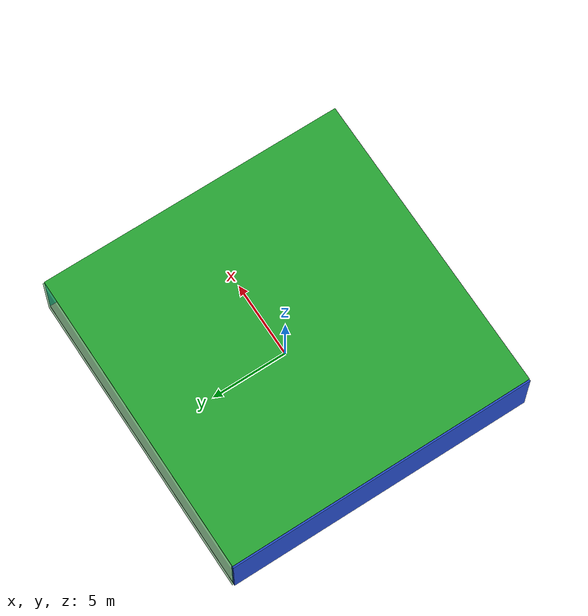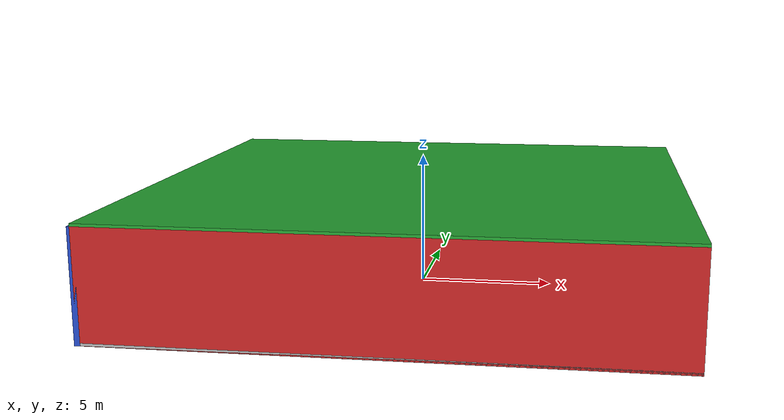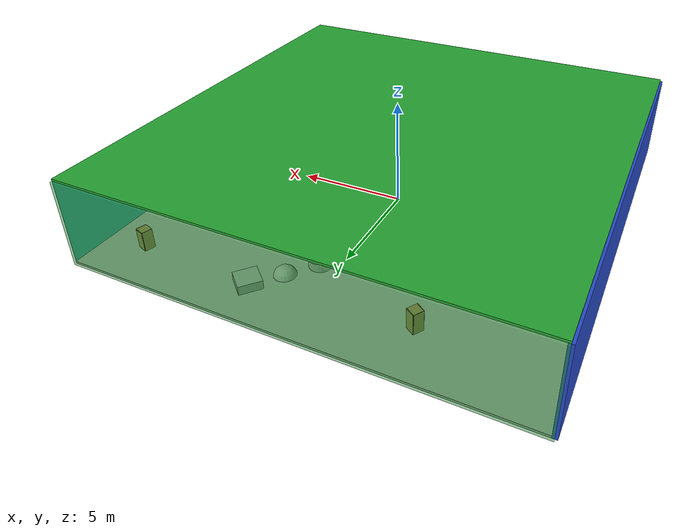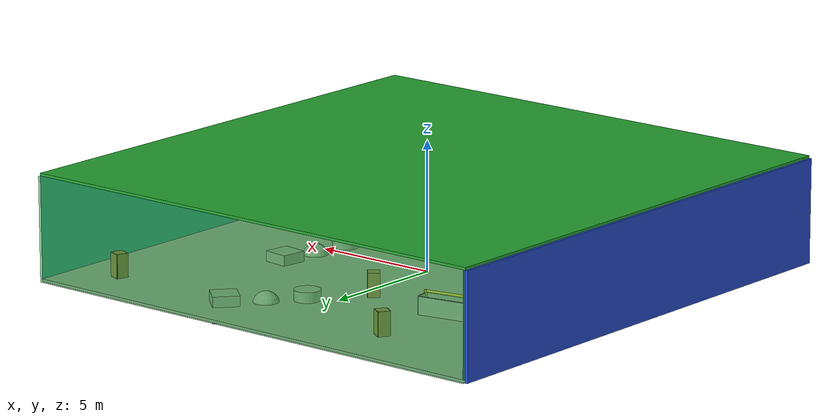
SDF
<sdf version="1.4">
 <world name="default">
  <physics type="ode">
   <max_step_size>0.001</max_step_size>
   <real_time_factor>1</real_time_factor>
   <real_time_update_rate>1000</real_time_update_rate>
   <gravity>0 0 -9.8</gravity>
  </physics>
  <scene><ambient>0.4 0.4 0.4 1</ambient><background>0.7 0.7 0.7 1</background><shadows>1</shadows></scene>
  <model name="Surrounding">
   <static>1</static>
   <link name="Ceiling">
    <collision name="Ceiling_Collision"><geometry><box><size>20 20 0.1</size></box></geometry></collision>
    <visual name="Ceiling_Visual">
     <geometry><box><size>20 20 0.1</size></box></geometry>
     <material>
      <script><uri>file://media/materials/scripts/gazebo.material</uri><name>Gazebo/Green</name></script>
     </material>
    </visual>
    <pose>0 0 4.05 0 0 0</pose>
   </link>
   <link name="Wall_South">
    <collision name="Wall_South_Collision">
     <geometry><box><size>20 0 4</size></box></geometry>
     <pose>0 0 2 0 -0 0</pose>
    </collision>
    <visual name="Wall_South_Visual">
     <pose>0 0 2 0 -0 0</pose>
     <geometry><box><size>20 0 4</size></box></geometry>
     <material>
      <script><uri>file://media/materials/scripts/gazebo.material</uri><name>Gazebo/Red</name></script>
     </material>
    </visual>
    <velocity_decay><linear>0</linear><angular>0</angular></velocity_decay>
    <pose>0 -10 0 0 -0 0</pose>
   </link>
   <link name="Wall_East">
    <collision name="Wall_21_Collision">
     <geometry><box><size>20 0 4</size></box></geometry>
     <pose>0 0 2 0 -0 0</pose>
    </collision>
    <visual name="Wall_21_Visual">
     <pose>0 0 2 0 -0 0</pose>
     <geometry><box><size>20 0 4</size></box></geometry>
     <material>
      <script><uri>file://media/materials/scripts/gazebo.material</uri><name>Gazebo/Turquoise</name></script>
     </material>
    </visual>
    <velocity_decay><linear>0</linear><angular>0</angular></velocity_decay>
    <pose>10 0 0 0 -0 1.5708</pose>
   </link>
   <link name="Wall_North">
    <collision name="Wall_22_Collision">
     <geometry><box><size>20 0.2 4</size></box></geometry>
     <pose>0 0 2 0 -0 0</pose>
    </collision>
    <visual name="Wall_22_Visual">
     <pose>0 0 2 0 -0 0</pose>
     <geometry><box><size>20 0.2 4</size></box></geometry>
     <material>
      <script><uri>file://media/materials/scripts/gazebo.material</uri><name>Gazebo/GreenTransparent</name></script>
     </material>
    </visual>
    <velocity_decay><linear>0</linear><angular>0</angular></velocity_decay>
    <pose>0 10 0 0 -0 0</pose>
   </link>
   <link name="Wall_West">
    <collision name="Wall_23_Collision">
     <geometry><box><size>20 0.2 4</size></box></geometry>
     <pose>0 0 2 0 -0 0</pose>
    </collision>
    <visual name="Wall_23_Visual">
     <pose>0 0 2 0 -0 0</pose>
     <geometry><box><size>20 0.2 4</size></box></geometry>
     <material>
      <script><uri>file://media/materials/scripts/gazebo.material</uri><name>Gazebo/BlueGlow</name></script>
     </material>
    </visual>
    <velocity_decay><linear>0</linear><angular>0</angular></velocity_decay>
    <pose>-10 0 0 0 0 -1.5708</pose>
   </link>
   <link name="Ground_link">
    <collision name="collision">
     <pose>0 0 .05 0 -0 0</pose>
     <geometry><box><size>20 20 0.1</size></box></geometry>
    </collision>
    <visual name="visual">
     <pose>0 0 .05 0 -0 0</pose>
     <geometry><box><size>20 20 0.1</size></box></geometry>
     <material>
      <script><uri>file://media/materials/scripts/gazebo.material</uri><name>Gazebo/PioneerBody</name></script>
     </material>
    </visual>
   </link>
   <static>1</static>
  </model>
  <spherical_coordinates>
   <surface_model>EARTH_WGS84</surface_model>
   <latitude_deg>0</latitude_deg>
   <longitude_deg>0</longitude_deg>
   <elevation>0</elevation>
   <heading_deg>0</heading_deg>
  </spherical_coordinates>
  <light name="lightball_0" type="diffuse">
   <diffuse>0.8 0.8 0.8 1</diffuse>
   <specular>0.2 0.2 0.2 1</specular>
   <attenuation>
    <range>100</range>
    <constant>0.7</constant>
    <linear>0.01</linear>
    <quadratic>0.001</quadratic>
   </attenuation>
   <direction>-0.5 0.1 -0.9</direction>
   <pose>-5.4392308069 -6.60225041427 1.87838618893 0 0 0</pose>
  </light>
  <light name="lightball_1" type="diffuse">
   <diffuse>0.8 0.8 0.8 1</diffuse>
   <specular>0.2 0.2 0.2 1</specular>
   <attenuation>
    <range>100</range>
    <constant>0.7</constant>
    <linear>0.01</linear>
    <quadratic>0.001</quadratic>
   </attenuation>
   <direction>-0.5 0.1 -0.9</direction>
   <pose>3.18837322308 -2.87995014258 1.09669041519 0 0 0</pose>
  </light>
  <light name="lightball_2" type="diffuse">
   <diffuse>0.8 0.8 0.8 1</diffuse>
   <specular>0.2 0.2 0.2 1</specular>
   <attenuation>
    <range>100</range>
    <constant>0.7</constant>
    <linear>0.01</linear>
    <quadratic>0.001</quadratic>
   </attenuation>
   <direction>-0.5 0.1 -0.9</direction>
   <pose>5.30017827822 -4.41618106789 0.923424314398 0 0 0</pose>
  </light>
  <light name="lightball_3" type="diffuse">
   <diffuse>0.8 0.8 0.8 1</diffuse>
   <specular>0.2 0.2 0.2 1</specular>
   <attenuation>
    <range>100</range>
    <constant>0.7</constant>
    <linear>0.01</linear>
    <quadratic>0.001</quadratic>
   </attenuation>
   <direction>-0.5 0.1 -0.9</direction>
   <pose>7.51772685378 0.814272313915 3.12072178209 0 0 0</pose>
  </light>
  <light name="lightball_4" type="diffuse">
   <diffuse>0.8 0.8 0.8 1</diffuse>
   <specular>0.2 0.2 0.2 1</specular>
   <attenuation>
    <range>100</range>
    <constant>0.7</constant>
    <linear>0.01</linear>
    <quadratic>0.001</quadratic>
   </attenuation>
   <direction>-0.5 0.1 -0.9</direction>
   <pose>-1.96295727795 5.65658632293 2.4209815721 0 0 0</pose>
  </light>
  <light name="lightball_5" type="diffuse">
   <diffuse>0.8 0.8 0.8 1</diffuse>
   <specular>0.2 0.2 0.2 1</specular>
   <attenuation>
    <range>100</range>
    <constant>0.7</constant>
    <linear>0.01</linear>
    <quadratic>0.001</quadratic>
   </attenuation>
   <direction>-0.5 0.1 -0.9</direction>
   <pose>-8.69582891591 -2.49312394049 2.2637957757 0 0 0</pose>
  </light>
  <light name="lightball_6" type="diffuse">
   <diffuse>0.8 0.8 0.8 1</diffuse>
   <specular>0.2 0.2 0.2 1</specular>
   <attenuation>
    <range>100</range>
    <constant>0.7</constant>
    <linear>0.01</linear>
    <quadratic>0.001</quadratic>
   </attenuation>
   <direction>-0.5 0.1 -0.9</direction>
   <pose>0.61901585206 8.72799220407 2.67383735331 0 0 0</pose>
  </light>
  <light name="lightball_7" type="diffuse">
   <diffuse>0.8 0.8 0.8 1</diffuse>
   <specular>0.2 0.2 0.2 1</specular>
   <attenuation>
    <range>100</range>
    <constant>0.7</constant>
    <linear>0.01</linear>
    <quadratic>0.001</quadratic>
   </attenuation>
   <direction>-0.5 0.1 -0.9</direction>
   <pose>-0.842460099944 3.20935868763 1.31321109471 0 0 0</pose>
  </light>
  <light name="lightball_8" type="diffuse">
   <diffuse>0.8 0.8 0.8 1</diffuse>
   <specular>0.2 0.2 0.2 1</specular>
   <attenuation>
    <range>100</range>
    <constant>0.7</constant>
    <linear>0.01</linear>
    <quadratic>0.001</quadratic>
   </attenuation>
   <direction>-0.5 0.1 -0.9</direction>
   <pose>-1.18211297564 1.02968425232 2.69160249096 0 0 0</pose>
  </light>
  <light name="lightball_9" type="diffuse">
   <diffuse>0.8 0.8 0.8 1</diffuse>
   <specular>0.2 0.2 0.2 1</specular>
   <attenuation>
    <range>100</range>
    <constant>0.7</constant>
    <linear>0.01</linear>
    <quadratic>0.001</quadratic>
   </attenuation>
   <direction>-0.5 0.1 -0.9</direction>
   <pose>-8.0916232165 1.32608369934 2.5276938716 0 0 0</pose>
  </light>
  <light name="lightball_10" type="diffuse">
   <diffuse>0.8 0.8 0.8 1</diffuse>
   <specular>0.2 0.2 0.2 1</specular>
   <attenuation>
    <range>100</range>
    <constant>0.7</constant>
    <linear>0.01</linear>
    <quadratic>0.001</quadratic>
   </attenuation>
   <direction>-0.5 0.1 -0.9</direction>
   <pose>-5.53768029782 6.47166224274 2.61966013175 0 0 0</pose>
  </light>
  <light name="lightball_11" type="diffuse">
   <diffuse>0.8 0.8 0.8 1</diffuse>
   <specular>0.2 0.2 0.2 1</specular>
   <attenuation>
    <range>100</range>
    <constant>0.7</constant>
    <linear>0.01</linear>
    <quadratic>0.001</quadratic>
   </attenuation>
   <direction>-0.5 0.1 -0.9</direction>
   <pose>1.69073406155 -8.95678274249 2.00176718842 0 0 0</pose>
  </light>
  <light name="lightball_12" type="diffuse">
   <diffuse>0.8 0.8 0.8 1</diffuse>
   <specular>0.2 0.2 0.2 1</specular>
   <attenuation>
    <range>100</range>
    <constant>0.7</constant>
    <linear>0.01</linear>
    <quadratic>0.001</quadratic>
   </attenuation>
   <direction>-0.5 0.1 -0.9</direction>
   <pose>9.81509247194 -5.95218566309 1.99268309273 0 0 0</pose>
  </light>
  <light name="lightball_13" type="diffuse">
   <diffuse>0.8 0.8 0.8 1</diffuse>
   <specular>0.2 0.2 0.2 1</specular>
   <attenuation>
    <range>100</range>
    <constant>0.7</constant>
    <linear>0.01</linear>
    <quadratic>0.001</quadratic>
   </attenuation>
   <direction>-0.5 0.1 -0.9</direction>
   <pose>9.40786496761 -0.107824317282 1.07029929546 0 0 0</pose>
  </light>
  <include><uri>model://table</uri><pose>-4.9340433017 -8.09958734047 0 0 0 1.93577201605</pose></include>
  <include>
   <uri>model://robocup_3Dsim_goal</uri>
   <pose>-4.51310834626 4.08299508525 0 0 0 1.75231017747</pose>
  </include>
  <include><uri>model://cabinet</uri><pose>-4.25492381935 7.58896468991 0 0 0 2.56691909053</pose></include>
  <include><uri>model://cabinet</uri><pose>-0.90374623233 -7.83880784258 0 0 0 0.359211449401</pose></include>
  <include><uri>model://cabinet</uri><pose>-0.779452785544 3.96268941253 0 0 0 0.714186162786</pose></include>
  <include>
   <uri>model://textured_shapes</uri>
   <pose>1.70586224387 7.02788950345 0 0 0 2.42550108794</pose>
  </include>
  <include>
   <uri>model://textured_shapes</uri>
   <pose>4.56679937443 1.01295705183 0 0 0 3.00918843679</pose>
  </include>
  <include><uri>model://cabinet</uri><pose>8.0328988431 7.96478972608 0 0 0 1.2579967147</pose></include>
 </world>
</sdf>

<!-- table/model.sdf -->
<sdf version="1.5">
  <model name="table">
    <static>true</static>
    <link name="link">
      <collision name="surface">
        <pose>0 0 1.0 0 0 0</pose>
        <geometry>
          <box>
            <size>1.5 0.8 0.03</size>
          </box>
        </geometry>
        <surface>
          <friction>
            <ode>
              <mu>0.6</mu>
              <mu2>0.6</mu2>
            </ode>
          </friction>
        </surface>
      </collision>
      <visual name="visual1">
        <pose>0 0 1.0 0 0 0</pose>
        <geometry>
          <box>
            <size>1.5 0.8 0.03</size>
          </box>
        </geometry>
        <material>
          <script>
            <uri>model://media/materials/scripts/gazebo.material</uri>
            <name>Gazebo/Wood</name>
          </script>
        </material>
      </visual>
      <collision name="front_left_leg">
        <pose>0.68 0.38 0.5 0 0 0</pose>
        <geometry>
          <cylinder>
            <radius>0.02</radius>
            <length>1.0</length>
          </cylinder>
        </geometry>
      </collision>
      <visual name="front_left_leg">
        <pose>0.68 0.38 0.5 0 0 0</pose>
        <geometry>
          <cylinder>
            <radius>0.02</radius>
            <length>1.0</length>
          </cylinder>
        </geometry>
        <material>
          <script>
            <uri>model://media/materials/scripts/gazebo.material</uri>
            <name>Gazebo/Grey</name>
          </script>
        </material>
      </visual>
      <collision name="front_right_leg">
        <pose>0.68 -0.38 0.5 0 0 0</pose>
        <geometry>
          <cylinder>
            <radius>0.02</radius>
            <length>1.0</length>
          </cylinder>
        </geometry>
      </collision>
      <visual name="front_right_leg">
        <pose>0.68 -0.38 0.5 0 0 0</pose>
        <geometry>
          <cylinder>
            <radius>0.02</radius>
            <length>1.0</length>
          </cylinder>
        </geometry>
        <material>
          <script>
            <uri>model://media/materials/scripts/gazebo.material</uri>
            <name>Gazebo/Grey</name>
          </script>
        </material>
      </visual>
      <collision name="back_right_leg">
        <pose>-0.68 -0.38 0.5 0 0 0</pose>
        <geometry>
          <cylinder>
            <radius>0.02</radius>
            <length>1.0</length>
          </cylinder>
        </geometry>
      </collision>
      <visual name="back_right_leg">
        <pose>-0.68 -0.38 0.5 0 0 0</pose>
        <geometry>
          <cylinder>
            <radius>0.02</radius>
            <length>1.0</length>
          </cylinder>
        </geometry>
        <material>
          <script>
            <uri>model://media/materials/scripts/gazebo.material</uri>
            <name>Gazebo/Grey</name>
          </script>
        </material>
      </visual>
      <collision name="back_left_leg">
        <pose>-0.68 0.38 0.5 0 0 0</pose>
        <geometry>
          <cylinder>
            <radius>0.02</radius>
            <length>1.0</length>
          </cylinder>
        </geometry>
      </collision>
      <visual name="back_left_leg">
        <pose>-0.68 0.38 0.5 0 0 0</pose>
        <geometry>
          <cylinder>
            <radius>0.02</radius>
            <length>1.0</length>
          </cylinder>
        </geometry>
        <material>
          <script>
            <uri>model://media/materials/scripts/gazebo.material</uri>
            <name>Gazebo/Grey</name>
          </script>
        </material>
      </visual>
    </link>
  </model>
</sdf>

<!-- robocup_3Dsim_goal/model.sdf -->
<sdf version="1.5">
  <model name="robocup_3d_goal">
    <static>true</static>
    <link name="left_post">
      <pose>0 1.05 0.45 0 0 0</pose>
      <collision name="collision">
        <geometry>
          <cylinder>
            <radius>0.05</radius>
            <length>0.9</length>
          </cylinder>
        </geometry>
      </collision>
      <visual name="visual">
        <geometry>
          <cylinder>
            <radius>0.05</radius>
            <length>0.9</length>
          </cylinder>
        </geometry>
        <material>
          <script>
            <uri>file://media/materials/scripts/gazebo.material</uri>
            <name>Gazebo/ZincYellow</name>
          </script>
        </material>
      </visual>
    </link>
    <link name="left_support_horiz_lower">
      <pose>0.30 1.05 0.01 0 0 0</pose>
      <collision name="collision">
        <geometry>
          <box>
            <size>0.50 0.02 0.02</size>
          </box>
        </geometry>
      </collision>
      <visual name="visual">
        <geometry>
          <box>
            <size>0.50 0.02 0.02</size>
          </box>
        </geometry>
        <material>
          <script>
            <uri>file://media/materials/scripts/gazebo.material</uri>
            <name>Gazebo/White</name>
          </script>
        </material>
      </visual>
    </link>
    <link name="left_support_horiz_upper">
      <pose>0.30 1.05 0.79 0 0 0</pose>
      <collision name="collision">
        <geometry>
          <box>
            <size>0.50 0.02 0.02</size>
          </box>
        </geometry>
      </collision>
      <visual name="visual">
        <geometry>
          <box>
            <size>0.50 0.02 0.02</size>
          </box>
        </geometry>
        <material>
          <script>
            <uri>file://media/materials/scripts/gazebo.material</uri>
            <name>Gazebo/White</name>
          </script>
        </material>
      </visual>
    </link>
    <link name="left_support_vertical">
      <pose>0.56 1.05 0.4 0 1.5708 0</pose>
      <collision name="collision">
        <geometry>
          <box>
            <size>0.80 0.02 0.02</size>
          </box>
        </geometry>
      </collision>
      <visual name="visual">
        <geometry>
          <box>
            <size>0.80 0.02 0.02</size>
          </box>
        </geometry>
        <material>
          <script>
            <uri>file://media/materials/scripts/gazebo.material</uri>
            <name>Gazebo/White</name>
          </script>
        </material>
      </visual>
    </link>
    <link name="right_support_horiz_lower">
      <pose>0.30 -1.05 0.01 0 0 0</pose>
      <collision name="collision">
        <geometry>
          <box>
            <size>0.50 0.02 0.02</size>
          </box>
        </geometry>
      </collision>
      <visual name="visual">
        <geometry>
          <box>
            <size>0.50 0.02 0.02</size>
          </box>
        </geometry>
        <material>
          <script>
            <uri>file://media/materials/scripts/gazebo.material</uri>
            <name>Gazebo/White</name>
          </script>
        </material>
      </visual>
    </link>
    <link name="right_support_horiz_upper">
      <pose>0.30 -1.05 0.79 0 0 0</pose>
      <collision name="collision">
        <geometry>
          <box>
            <size>0.50 0.02 0.02</size>
          </box>
        </geometry>
      </collision>
      <visual name="visual">
        <geometry>
          <box>
            <size>0.50 0.02 0.02</size>
          </box>
        </geometry>
        <material>
          <script>
            <uri>file://media/materials/scripts/gazebo.material</uri>
            <name>Gazebo/White</name>
          </script>
        </material>
      </visual>
    </link>
    <link name="right_support_vertical">
      <pose>0.56 -1.05 0.4 0 1.5708 0</pose>
      <collision name="collision">
        <geometry>
          <box>
            <size>0.80 0.02 0.02</size>
          </box>
        </geometry>
      </collision>
      <visual name="visual">
        <geometry>
          <box>
            <size>0.80 0.02 0.02</size>
          </box>
        </geometry>
        <material>
          <script>
            <uri>file://media/materials/scripts/gazebo.material</uri>
            <name>Gazebo/White</name>
          </script>
        </material>
      </visual>
    </link>
    <link name="center_support_horiz_lower">
      <pose>0.56 0 0.01 0 1.5708 0</pose>
      <collision name="collision">
        <geometry>
          <box>
            <size>0.02 2.08 0.02</size>
          </box>
        </geometry>
      </collision>
      <visual name="visual">
        <geometry>
          <box>
            <size>0.02 2.08 0.02</size>
          </box>
        </geometry>
        <material>
          <script>
            <uri>file://media/materials/scripts/gazebo.material</uri>
            <name>Gazebo/White</name>
          </script>
        </material>
      </visual>
    </link>
    <link name="center_support_horiz_upper">
      <pose>0.56 0 0.79 0 1.5708 0</pose>
      <collision name="collision">
        <geometry>
          <box>
            <size>0.02 2.08 0.02</size>
          </box>
        </geometry>
      </collision>
      <visual name="visual">
        <geometry>
          <box>
            <size>0.02 2.08 0.02</size>
          </box>
        </geometry>
        <material>
          <script>
            <uri>file://media/materials/scripts/gazebo.material</uri>
            <name>Gazebo/White</name>
          </script>
        </material>
      </visual>
    </link>
    <link name="right_post">
      <pose>0 -1.05 0.45 0 0 0</pose>
      <collision name="collision">
        <geometry>
          <cylinder>
            <radius>0.05</radius>
            <length>0.9</length>
          </cylinder>
        </geometry>
      </collision>
      <visual name="visual">
        <geometry>
          <cylinder>
            <radius>0.05</radius>
            <length>0.9</length>
          </cylinder>
        </geometry>
        <material>
          <script>
            <uri>file://media/materials/scripts/gazebo.material</uri>
            <name>Gazebo/ZincYellow</name>
          </script>
        </material>
      </visual>
    </link>
    <link name="crossbar">
      <pose>0 0 0.85 1.57 1.57 0</pose>
      <collision name="collision">
        <geometry>
          <cylinder>
            <radius>0.05</radius>
            <length>2.0</length>
          </cylinder>
        </geometry>
      </collision>
      <visual name="visual">
        <geometry>
          <cylinder>
            <radius>0.05</radius>
            <length>2.0</length>
          </cylinder>
        </geometry>
        <material>
          <script>
            <uri>file://media/materials/scripts/gazebo.material</uri>
            <name>Gazebo/ZincYellow</name>
          </script>
        </material>
      </visual>
    </link>
    <link name="center_net">
      <pose>0.56 0 0.40 0 0 0</pose>
      <collision name="collision">
        <geometry>
          <box>
            <size>0.01 2.1 0.80</size>
          </box>
        </geometry>
      </collision>
      <visual name="visual">
        <geometry>
          <box>
            <size>0.01 2.1 0.80</size>
          </box>
        </geometry>
        <material>
          <script>
            <uri>model://../model_source/models/robocup09_spl_field/materials/scripts/</uri>
            <uri>model://../model_source/models/robocup09_spl_field/materials/textures/</uri>
            <name>RoboCup/Net</name>
          </script>
        </material>
      </visual>
    </link>
    <link name="left_net">
      <pose>0.30 1.05 0.40 0 0 0</pose>
      <collision name="collision">
        <geometry>
          <box>
            <size>0.50 0.01 0.76</size>
          </box>
        </geometry>
      </collision>
      <visual name="visual">
        <geometry>
          <box>
            <size>0.50 0.01 0.76</size>
          </box>
        </geometry>
        <material>
          <script>
            <uri>model://../model_source/models/robocup09_spl_field/materials/scripts/</uri>
            <uri>model://../model_source/models/robocup09_spl_field/materials/textures/</uri>
            <name>RoboCup/Net</name>
          </script>
        </material>
      </visual>
    </link>
    <link name="right_net">
      <pose>0.30 -1.05 0.40 0 0 0</pose>
      <collision name="collision">
        <geometry>
          <box>
            <size>0.50 0.01 0.76</size>
          </box>
        </geometry>
      </collision>
      <visual name="visual">
        <geometry>
          <box>
            <size>0.50 0.01 0.76</size>
          </box>
        </geometry>
        <material>
          <script>
            <uri>model://../model_source/models/robocup09_spl_field/materials/scripts/</uri>
            <uri>model://../model_source/models/robocup09_spl_field/materials/textures/</uri>
            <name>RoboCup/Net</name>
          </script>
        </material>
      </visual>
    </link>
  </model>
</sdf>

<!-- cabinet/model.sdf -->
<sdf version="1.5">
  <model name="cabinet">
    <static>true</static>
    <link name="cabinet_bottom_plate">
      <inertial>
        <pose>0 0 -1 0 0 0</pose>
        <inertia>
          <ixx>2.050000</ixx>
          <ixy>0</ixy>
          <ixz>0</ixz>
          <iyy>2.050000</iyy>
          <iyz>0</iyz>
          <izz>2.050000</izz>
        </inertia>
        <mass>25.000000</mass>
      </inertial>
      <collision name="cabinet_bottom_plate_geom">
        <pose>0 0 0.010000 0 0 0</pose>
        <geometry>
          <box>
            <size>0.450000 0.450000 0.020000</size>
          </box>
        </geometry>
      </collision>
      <visual name="cabinet_bottom_plate_geom_visual">
        <pose>0 0 0.010000 0 0 0</pose>
        <geometry>
          <box>
            <size>0.450000 0.450000 0.020000</size>
          </box>
        </geometry>
        <material>
          <script>
            <uri>model://media/materials/scripts/gazebo.material</uri>
            <name>Gazebo/Wood</name>
          </script>
        </material>
      </visual>
      <collision name="cabinet_bottom_plate_geom_cabinet_back_plate">
        <pose>0.235000 0 0.510000 0 0 0</pose>
        <geometry>
          <box>
            <size>0.020000 0.450000 1.020000</size>
          </box>
        </geometry>
      </collision>
      <visual name="cabinet_bottom_plate_geom_cabinet_back_plate_visual">
        <pose>0.235000 0 0.510000 0 0 0</pose>
        <geometry>
          <box>
            <size>0.020000 0.450000 1.020000</size>
          </box>
        </geometry>
        <material>
          <script>
            <uri>model://media/materials/scripts/gazebo.material</uri>
            <name>Gazebo/Wood</name>
          </script>
        </material>
      </visual>
      <collision name="cabinet_bottom_plate_geom_cabinet_left_plate">
        <pose>0 0.235000 0.510000 0 0 0</pose>
        <geometry>
          <box>
            <size>0.450000 0.020000 1.020000</size>
          </box>
        </geometry>
      </collision>
      <visual name="cabinet_bottom_plate_geom_cabinet_left_plate_visual">
        <pose>0 0.235000 0.510000 0 0 0</pose>
        <geometry>
          <box>
            <size>0.450000 0.020000 1.020000</size>
          </box>
        </geometry>
        <material>
          <script>
            <uri>model://media/materials/scripts/gazebo.material</uri>
            <name>Gazebo/Wood</name>
          </script>
        </material>
      </visual>
      <collision name="cabinet_bottom_plate_geom_cabinet_middle_plate">
        <pose>0 0 0.510000 0 0 0</pose>
        <geometry>
          <box>
            <size>0.450000 0.450000 0.020000</size>
          </box>
        </geometry>
      </collision>
      <visual name="cabinet_bottom_plate_geom_cabinet_middle_plate_visual">
        <pose>0 0 0.510000 0 0 0</pose>
        <geometry>
          <box>
            <size>0.450000 0.450000 0.020000</size>
          </box>
        </geometry>
        <material>
          <script>
            <uri>model://media/materials/scripts/gazebo.material</uri>
            <name>Gazebo/Wood</name>
          </script>
        </material>
      </visual>
      <collision name="cabinet_bottom_plate_geom_cabinet_right_plate">
        <pose>0 -0.235000 0.510000 0 0 0</pose>
        <geometry>
          <box>
            <size>0.450000 0.020000 1.020000</size>
          </box>
        </geometry>
      </collision>
      <visual name="cabinet_bottom_plate_geom_cabinet_right_plate_visual">
        <pose>0 -0.235000 0.510000 0 0 0</pose>
        <geometry>
          <box>
            <size>0.450000 0.020000 1.020000</size>
          </box>
        </geometry>
        <material>
          <script>
            <uri>model://media/materials/scripts/gazebo.material</uri>
            <name>Gazebo/Wood</name>
          </script>
        </material>
      </visual>
      <collision name="cabinet_bottom_plate_geom_cabinet_top_plate">
        <pose>0 0 1.010000 0 0 0</pose>
        <geometry>
          <box>
            <size>0.450000 0.450000 0.020000</size>
          </box>
        </geometry>
      </collision>
      <visual name="cabinet_bottom_plate_geom_cabinet_top_plate_visual">
        <pose>0 0 1.010000 0 0 0</pose>
        <geometry>
          <box>
            <size>0.450000 0.450000 0.020000</size>
          </box>
        </geometry>
        <material>
          <script>
            <uri>model://media/materials/scripts/gazebo.material</uri>
            <name>Gazebo/Wood</name>
          </script>
        </material>
      </visual>
    </link>
  </model>
</sdf>

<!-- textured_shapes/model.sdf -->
<sdf version="1.6">
  <model name="textured_shapes">
    <pose>0 0 0.5 0 0 0</pose>
    <link name="box">
      <pose>0 -1.5 0 0 0 0</pose>
      <collision name="collision">
        <geometry>
          <box>
            <size>1 1 1</size>
          </box>
        </geometry>
      </collision>
      <visual name="visual">
        <geometry>
          <box>
            <size>1 1 1</size>
          </box>
        </geometry>
        <material>
          <script>
            <uri>model://../model_source/models/textured_shapes/materials/scripts</uri>
            <uri>model://../model_source/models/textured_shapes/materials/textures</uri>
            <name>TexturedShape/Squares</name>
          </script>
        </material>
      </visual>
    </link>
    <link name="sphere">
      <collision name="collision">
        <geometry>
          <sphere>
            <radius>0.5</radius>
          </sphere>
        </geometry>
      </collision>
      <visual name="visual">
        <geometry>
          <sphere>
            <radius>0.5</radius>
          </sphere>
        </geometry>
        <material>
          <script>
            <uri>model://../model_source/models/textured_shapes/materials/scripts</uri>
            <uri>model://../model_source/models/textured_shapes/materials/textures</uri>
            <name>TexturedShape/Squares</name>
          </script>
        </material>
      </visual>
    </link>
    <link name="cylinder">
      <pose>0 1.5 0 0 0 0</pose>
      <collision name="collision">
        <geometry>
          <cylinder>
            <radius>0.5</radius>
            <length>1</length>
          </cylinder>
        </geometry>
      </collision>
      <visual name="visual">
        <geometry>
          <cylinder>
            <radius>0.5</radius>
            <length>1</length>
          </cylinder>
        </geometry>
        <material>
          <script>
            <uri>model://../model_source/models/textured_shapes/materials/scripts</uri>
            <uri>model://../model_source/models/textured_shapes/materials/textures</uri>
            <name>TexturedShape/Squares</name>
          </script>
        </material>
      </visual>
    </link>
  </model>
</sdf>
